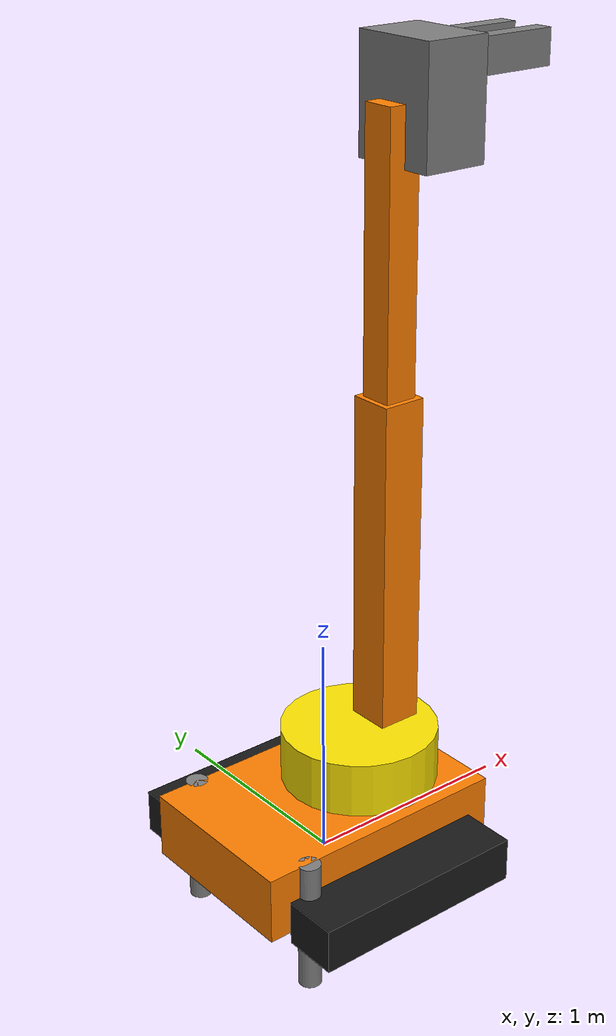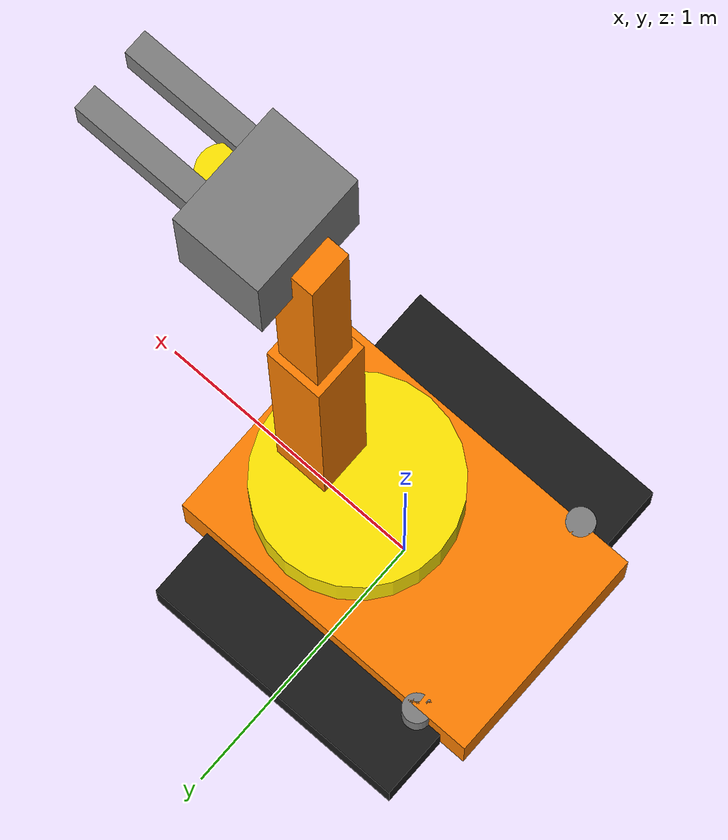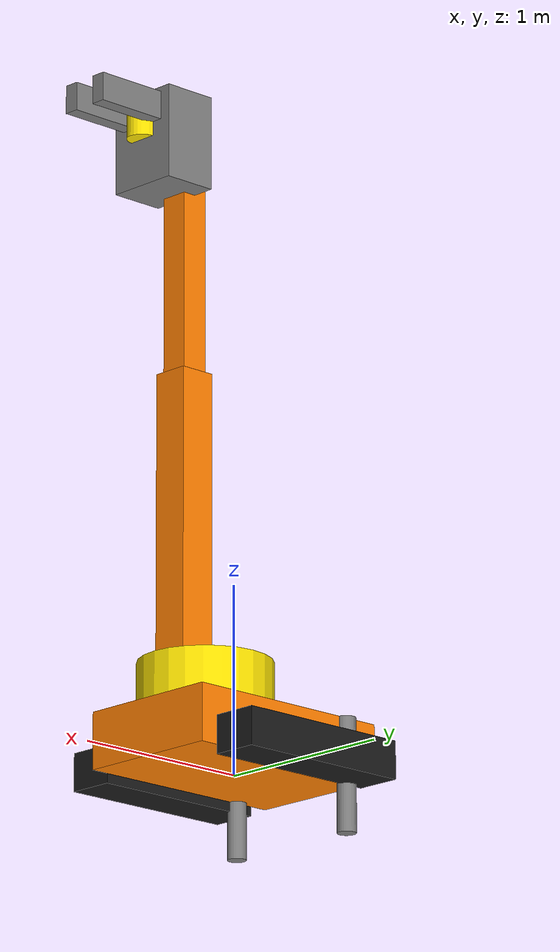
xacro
<?xml version="1.0"?>
<robot xmlns:xacro="http://www.ros.org/wiki/xacro" name="brokk_demolition_robot">

  <!-- Material definitions -->
  <material name="orange">
    <color rgba="1.0 0.5 0.0 1.0"/>
  </material>

  <material name="black">
    <color rgba="0.1 0.1 0.1 1.0"/>
  </material>

  <material name="yellow">
    <color rgba="1.0 0.9 0.0 1.0"/>
  </material>

  <material name="grey">
    <color rgba="0.5 0.5 0.5 1.0"/>
  </material>

  <!-- BASE CHASSIS -->
  <link name="base_link">
    <visual>
      <geometry>
        <box size="1.2 0.8 0.3"/>
      </geometry>
      <origin xyz="0 0 0.15" rpy="0 0 0"/>
      <material name="orange"/>
    </visual>
    <collision>
      <geometry>
        <box size="1.2 0.8 0.3"/>
      </geometry>
      <origin xyz="0 0 0.15" rpy="0 0 0"/>
    </collision>
    <inertial>
      <mass value="500.0"/>
      <origin xyz="0 0 0.15" rpy="0 0 0"/>
      <inertia ixx="20.0" ixy="0.0" ixz="0.0"
               iyy="30.0" iyz="0.0" izz="40.0"/>
    </inertial>
  </link>

  <!-- TRACKS (Cylinder 9 & 10: Left/Right Track) -->

  <!-- Left Track -->
  <link name="track_left">
    <visual>
      <geometry>
        <box size="1.0 0.25 0.2"/>
      </geometry>
      <origin xyz="0 0 0" rpy="0 0 0"/>
      <material name="black"/>
    </visual>
    <collision>
      <geometry>
        <box size="1.0 0.25 0.2"/>
      </geometry>
      <origin xyz="0 0 0" rpy="0 0 0"/>
    </collision>
    <inertial>
      <mass value="50.0"/>
      <origin xyz="0 0 0" rpy="0 0 0"/>
      <inertia ixx="1.0" ixy="0.0" ixz="0.0"
               iyy="2.0" iyz="0.0" izz="2.0"/>
    </inertial>
  </link>

  <joint name="track_left_joint" type="continuous">
    <parent link="base_link"/>
    <child link="track_left"/>
    <origin xyz="0 0.525 0.05" rpy="0 0 0"/>
    <axis xyz="1 0 0"/>
    <dynamics damping="10.0" friction="5.0"/>
  </joint>

  <!-- Right Track -->
  <link name="track_right">
    <visual>
      <geometry>
        <box size="1.0 0.25 0.2"/>
      </geometry>
      <origin xyz="0 0 0" rpy="0 0 0"/>
      <material name="black"/>
    </visual>
    <collision>
      <geometry>
        <box size="1.0 0.25 0.2"/>
      </geometry>
      <origin xyz="0 0 0" rpy="0 0 0"/>
    </collision>
    <inertial>
      <mass value="50.0"/>
      <origin xyz="0 0 0" rpy="0 0 0"/>
      <inertia ixx="1.0" ixy="0.0" ixz="0.0"
               iyy="2.0" iyz="0.0" izz="2.0"/>
    </inertial>
  </link>

  <joint name="track_right_joint" type="continuous">
    <parent link="base_link"/>
    <child link="track_right"/>
    <origin xyz="0 -0.525 0.05" rpy="0 0 0"/>
    <axis xyz="1 0 0"/>
    <dynamics damping="10.0" friction="5.0"/>
  </joint>

  <!-- OUTRIGGERS (Cylinder 7 & 8: Left/Right Outrigger) -->

  <!-- Left Outrigger -->
  <link name="outrigger_left">
    <visual>
      <geometry>
        <cylinder radius="0.05" length="0.6"/>
      </geometry>
      <origin xyz="0 0 -0.3" rpy="0 0 0"/>
      <material name="grey"/>
    </visual>
    <collision>
      <geometry>
        <cylinder radius="0.05" length="0.6"/>
      </geometry>
      <origin xyz="0 0 -0.3" rpy="0 0 0"/>
    </collision>
    <inertial>
      <mass value="20.0"/>
      <origin xyz="0 0 -0.3" rpy="0 0 0"/>
      <inertia ixx="0.5" ixy="0.0" ixz="0.0"
               iyy="0.5" iyz="0.0" izz="0.1"/>
    </inertial>
  </link>

  <joint name="outrigger_left_joint" type="prismatic">
    <parent link="base_link"/>
    <child link="outrigger_left"/>
    <origin xyz="-0.4 0.4 0.3" rpy="0 0 0"/>
    <axis xyz="0 0 1"/>
    <limit lower="0.0" upper="0.5" effort="5000.0" velocity="0.2"/>
    <dynamics damping="50.0" friction="10.0"/>
  </joint>

  <!-- Right Outrigger -->
  <link name="outrigger_right">
    <visual>
      <geometry>
        <cylinder radius="0.05" length="0.6"/>
      </geometry>
      <origin xyz="0 0 -0.3" rpy="0 0 0"/>
      <material name="grey"/>
    </visual>
    <collision>
      <geometry>
        <cylinder radius="0.05" length="0.6"/>
      </geometry>
      <origin xyz="0 0 -0.3" rpy="0 0 0"/>
    </collision>
    <inertial>
      <mass value="20.0"/>
      <origin xyz="0 0 -0.3" rpy="0 0 0"/>
      <inertia ixx="0.5" ixy="0.0" ixz="0.0"
               iyy="0.5" iyz="0.0" izz="0.1"/>
    </inertial>
  </link>

  <joint name="outrigger_right_joint" type="prismatic">
    <parent link="base_link"/>
    <child link="outrigger_right"/>
    <origin xyz="-0.4 -0.4 0.3" rpy="0 0 0"/>
    <axis xyz="0 0 1"/>
    <limit lower="0.0" upper="0.5" effort="5000.0" velocity="0.2"/>
    <dynamics damping="50.0" friction="10.0"/>
  </joint>

  <!-- SLEW PLATFORM (Cylinder 6: Slew rotation) -->
  <link name="slew_platform">
    <visual>
      <geometry>
        <cylinder radius="0.35" length="0.25"/>
      </geometry>
      <origin xyz="0 0 0.125" rpy="0 0 0"/>
      <material name="yellow"/>
    </visual>
    <collision>
      <geometry>
        <cylinder radius="0.35" length="0.25"/>
      </geometry>
      <origin xyz="0 0 0.125" rpy="0 0 0"/>
    </collision>
    <inertial>
      <mass value="200.0"/>
      <origin xyz="0 0 0.125" rpy="0 0 0"/>
      <inertia ixx="5.0" ixy="0.0" ixz="0.0"
               iyy="5.0" iyz="0.0" izz="8.0"/>
    </inertial>
  </link>

  <joint name="slew_joint" type="continuous">
    <parent link="base_link"/>
    <child link="slew_platform"/>
    <origin xyz="0.2 0 0.3" rpy="0 0 0"/>
    <axis xyz="0 0 1"/>
    <dynamics damping="20.0" friction="5.0"/>
  </joint>

  <!-- BOOM (Cylinder 1: First arm segment) -->
  <link name="boom">
    <visual>
      <geometry>
        <box size="0.2 0.2 1.5"/>
      </geometry>
      <origin xyz="0 0 0.75" rpy="0 0 0"/>
      <material name="orange"/>
    </visual>
    <collision>
      <geometry>
        <box size="0.2 0.2 1.5"/>
      </geometry>
      <origin xyz="0 0 0.75" rpy="0 0 0"/>
    </collision>
    <inertial>
      <mass value="150.0"/>
      <origin xyz="0 0 0.75" rpy="0 0 0"/>
      <inertia ixx="30.0" ixy="0.0" ixz="0.0"
               iyy="30.0" iyz="0.0" izz="1.0"/>
    </inertial>
  </link>

  <joint name="boom_joint" type="revolute">
    <parent link="slew_platform"/>
    <child link="boom"/>
    <origin xyz="0.15 0 0.25" rpy="0 0 0"/>
    <axis xyz="0 1 0"/>
    <limit lower="-0.5" upper="1.57" effort="10000.0" velocity="0.5"/>
    <dynamics damping="50.0" friction="10.0"/>
  </joint>

  <!-- STICK (Cylinder 2: Second arm segment) -->
  <link name="stick">
    <visual>
      <geometry>
        <box size="0.15 0.15 1.2"/>
      </geometry>
      <origin xyz="0 0 0.6" rpy="0 0 0"/>
      <material name="orange"/>
    </visual>
    <collision>
      <geometry>
        <box size="0.15 0.15 1.2"/>
      </geometry>
      <origin xyz="0 0 0.6" rpy="0 0 0"/>
    </collision>
    <inertial>
      <mass value="100.0"/>
      <origin xyz="0 0 0.6" rpy="0 0 0"/>
      <inertia ixx="15.0" ixy="0.0" ixz="0.0"
               iyy="15.0" iyz="0.0" izz="0.5"/>
    </inertial>
  </link>

  <joint name="stick_joint" type="revolute">
    <parent link="boom"/>
    <child link="stick"/>
    <origin xyz="0 0 1.5" rpy="0 0 0"/>
    <axis xyz="0 1 0"/>
    <limit lower="-2.5" upper="0.5" effort="8000.0" velocity="0.5"/>
    <dynamics damping="40.0" friction="8.0"/>
  </joint>

  <!-- BUCKET ATTACHMENT (Cylinder 3: Bucket tilt) -->
  <link name="bucket">
    <visual>
      <geometry>
        <box size="0.3 0.4 0.5"/>
      </geometry>
      <origin xyz="0.15 0 0" rpy="0 0 0"/>
      <material name="grey"/>
    </visual>
    <collision>
      <geometry>
        <box size="0.3 0.4 0.5"/>
      </geometry>
      <origin xyz="0.15 0 0" rpy="0 0 0"/>
    </collision>
    <inertial>
      <mass value="80.0"/>
      <origin xyz="0.15 0 0" rpy="0 0 0"/>
      <inertia ixx="2.0" ixy="0.0" ixz="0.0"
               iyy="3.0" iyz="0.0" izz="2.0"/>
    </inertial>
  </link>

  <joint name="bucket_joint" type="revolute">
    <parent link="stick"/>
    <child link="bucket"/>
    <origin xyz="0 0 1.2" rpy="0 0 0"/>
    <axis xyz="0 1 0"/>
    <limit lower="-1.57" upper="1.57" effort="5000.0" velocity="0.8"/>
    <dynamics damping="30.0" friction="5.0"/>
  </joint>

  <!-- TOOL ROTATION (Cylinder 4: Tool/bucket rotation around vertical axis) -->
  <link name="tool_rotator">
    <visual>
      <geometry>
        <cylinder radius="0.08" length="0.15"/>
      </geometry>
      <origin xyz="0 0 0.075" rpy="0 0 0"/>
      <material name="yellow"/>
    </visual>
    <collision>
      <geometry>
        <cylinder radius="0.08" length="0.15"/>
      </geometry>
      <origin xyz="0 0 0.075" rpy="0 0 0"/>
    </collision>
    <inertial>
      <mass value="30.0"/>
      <origin xyz="0 0 0.075" rpy="0 0 0"/>
      <inertia ixx="0.5" ixy="0.0" ixz="0.0"
               iyy="0.5" iyz="0.0" izz="0.1"/>
    </inertial>
  </link>

  <joint name="tool_rotation_joint" type="revolute">
    <parent link="bucket"/>
    <child link="tool_rotator"/>
    <origin xyz="0.3 0 0" rpy="0 0 0"/>
    <axis xyz="1 0 0"/>
    <limit lower="-3.14" upper="3.14" effort="3000.0" velocity="1.0"/>
    <dynamics damping="20.0" friction="3.0"/>
  </joint>

  <!-- TOOL 1 (Cylinder 5: Gripper/crusher jaw 1) -->
  <link name="tool_jaw_1">
    <visual>
      <geometry>
        <box size="0.4 0.08 0.15"/>
      </geometry>
      <origin xyz="0.2 0.1 0" rpy="0 0 0"/>
      <material name="grey"/>
    </visual>
    <collision>
      <geometry>
        <box size="0.4 0.08 0.15"/>
      </geometry>
      <origin xyz="0.2 0.1 0" rpy="0 0 0"/>
    </collision>
    <inertial>
      <mass value="25.0"/>
      <origin xyz="0.2 0.1 0" rpy="0 0 0"/>
      <inertia ixx="0.2" ixy="0.0" ixz="0.0"
               iyy="0.5" iyz="0.0" izz="0.5"/>
    </inertial>
  </link>

  <joint name="tool_jaw_1_joint" type="revolute">
    <parent link="tool_rotator"/>
    <child link="tool_jaw_1"/>
    <origin xyz="0 0 0.15" rpy="0 0 0"/>
    <axis xyz="1 0 0"/>
    <limit lower="-0.5" upper="0.8" effort="4000.0" velocity="0.5"/>
    <dynamics damping="15.0" friction="5.0"/>
  </joint>

  <!-- TOOL 2 (Jaw 2 mirrors Jaw 1 for crusher/gripper) -->
  <link name="tool_jaw_2">
    <visual>
      <geometry>
        <box size="0.4 0.08 0.15"/>
      </geometry>
      <origin xyz="0.2 -0.1 0" rpy="0 0 0"/>
      <material name="grey"/>
    </visual>
    <collision>
      <geometry>
        <box size="0.4 0.08 0.15"/>
      </geometry>
      <origin xyz="0.2 -0.1 0" rpy="0 0 0"/>
    </collision>
    <inertial>
      <mass value="25.0"/>
      <origin xyz="0.2 -0.1 0" rpy="0 0 0"/>
      <inertia ixx="0.2" ixy="0.0" ixz="0.0"
               iyy="0.5" iyz="0.0" izz="0.5"/>
    </inertial>
  </link>

  <joint name="tool_jaw_2_joint" type="revolute">
    <parent link="tool_rotator"/>
    <child link="tool_jaw_2"/>
    <origin xyz="0 0 0.15" rpy="0 0 0"/>
    <axis xyz="1 0 0"/>
    <limit lower="-0.8" upper="0.5" effort="4000.0" velocity="0.5"/>
    <dynamics damping="15.0" friction="5.0"/>
  </joint>

</robot>
